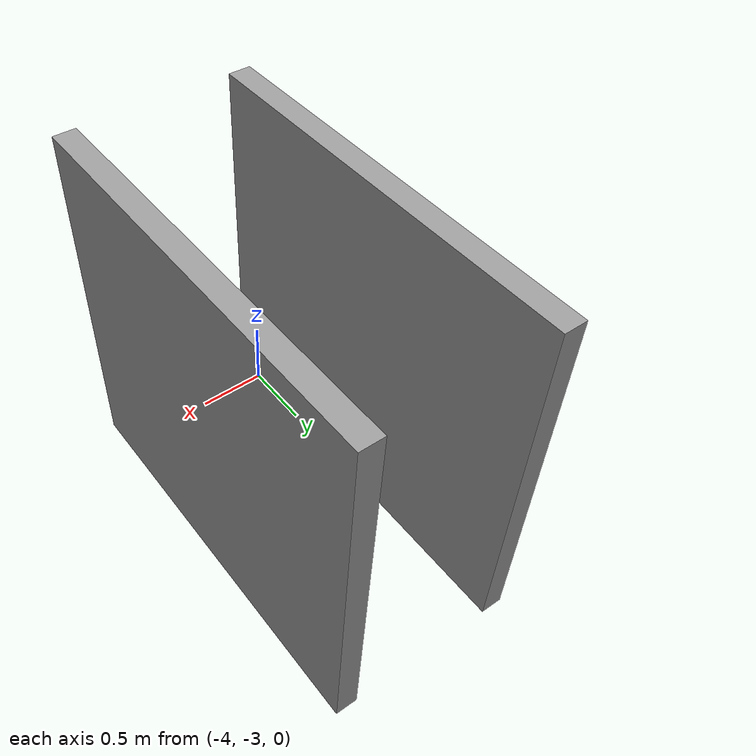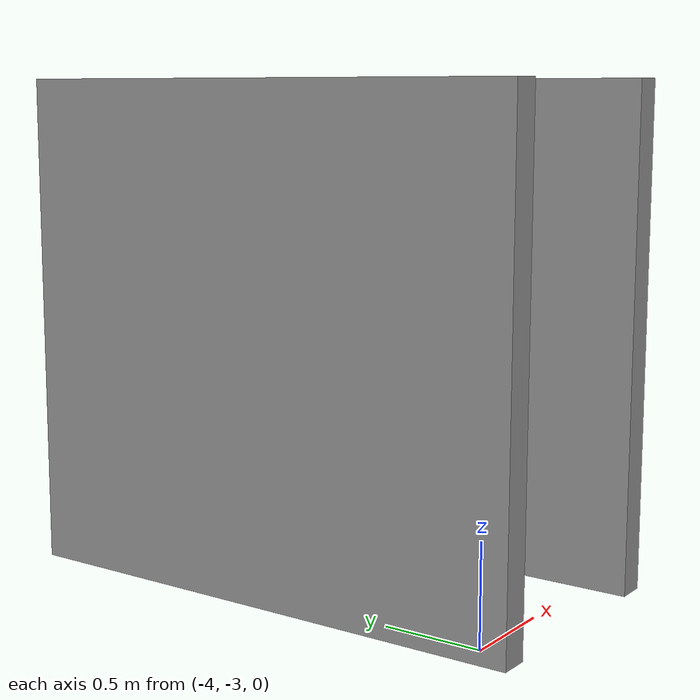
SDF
<?xml version='1.0'?>
<sdf version='1.7'>
  <model name='tunnel1'>
    <pose>-2.0775 -1.6125 0 0 -0 0</pose>
    <link name='Wall_0'>
      <collision name='Wall_0_Collision'>
        <geometry>
          <box>
            <size>2.75 0.15 2.5</size>
          </box>
        </geometry>
        <pose>0 0 1.25 0 -0 0</pose>
      </collision>
      <visual name='Wall_0_Visual'>
        <pose>0 0 1.25 0 -0 0</pose>
        <geometry>
          <box>
            <size>2.75 0.15 2.5</size>
          </box>
        </geometry>
        <material>
          <script>
            <uri>file://media/materials/scripts/gazebo.material</uri>
            <name>Gazebo/Grey</name>
          </script>
          <ambient>1 1 1 1</ambient>
        </material>
        <meta>
          <layer>0</layer>
        </meta>
      </visual>
      <pose>-2.0025 -0.2275 0 0 -0 1.5708</pose>
    </link>
    <link name='Wall_3'>
      <collision name='Wall_3_Collision'>
        <geometry>
          <box>
            <size>2.75 0.15 2.5</size>
          </box>
        </geometry>
        <pose>0 0 1.25 0 -0 0</pose>
      </collision>
      <visual name='Wall_3_Visual'>
        <pose>0 0 1.25 0 -0 0</pose>
        <geometry>
          <box>
            <size>2.75 0.15 2.5</size>
          </box>
        </geometry>
        <material>
          <script>
            <uri>file://media/materials/scripts/gazebo.material</uri>
            <name>Gazebo/Grey</name>
          </script>
          <ambient>1 1 1 1</ambient>
        </material>
        <meta>
          <layer>0</layer>
        </meta>
      </visual>
      <pose>-0.8325 -0.2375 0 0 -0 1.5708</pose>
    </link>
    <static>1</static>
  </model>
</sdf>
